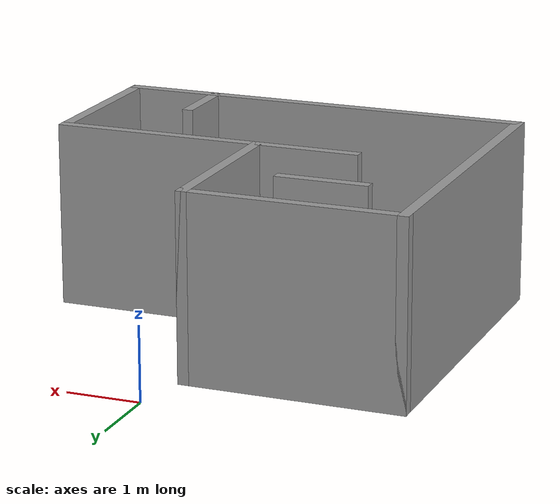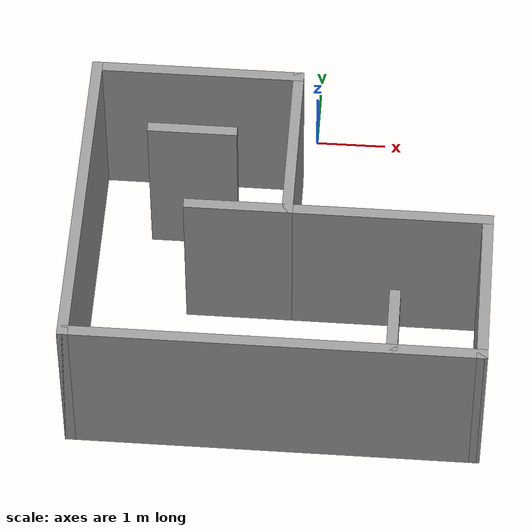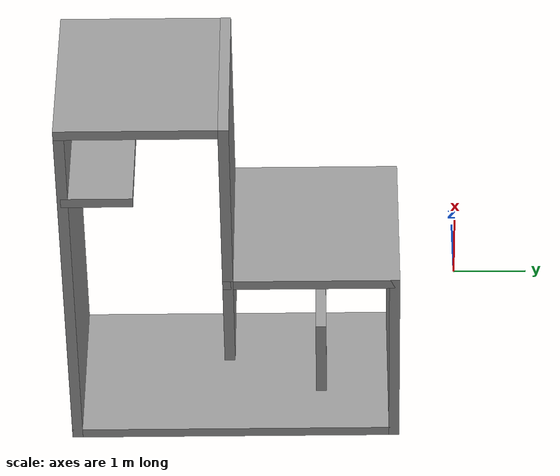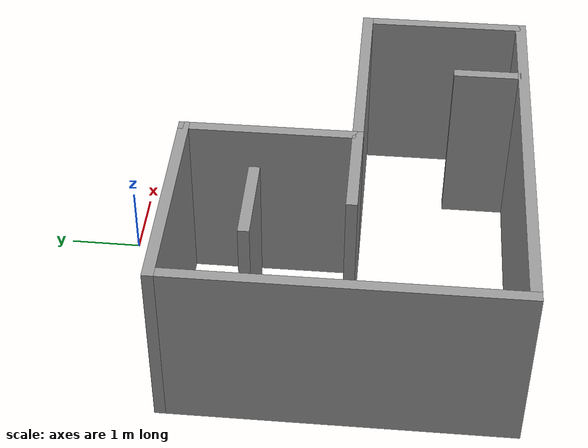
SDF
<?xml version='1.0'?>
<sdf version='1.7'>
  <model name='nav_1'>
    <pose>-0.28 -2.7525 0 0 -0 0</pose>
    <link name='Wall_0'>
      <collision name='Wall_0_Collision'>
        <geometry>
          <box>
            <size>3 0.15 2.5</size>
          </box>
        </geometry>
        <pose>0 0 1.25 0 -0 0</pose>
      </collision>
      <visual name='Wall_0_Visual'>
        <pose>0 0 1.25 0 -0 0</pose>
        <geometry>
          <box>
            <size>3 0.15 2.5</size>
          </box>
        </geometry>
        <material>
          <script>
            <uri>file://media/materials/scripts/gazebo.material</uri>
            <name>Gazebo/Grey</name>
          </script>
          <ambient>1 1 1 1</ambient>
        </material>
        <meta>
          <layer>0</layer>
        </meta>
      </visual>
      <pose>-1.375 1.9225 0 0 -0 0</pose>
    </link>
    <link name='Wall_1'>
      <collision name='Wall_1_Collision'>
        <geometry>
          <box>
            <size>2.5 0.15 2.5</size>
          </box>
        </geometry>
        <pose>0 0 1.25 0 -0 0</pose>
      </collision>
      <visual name='Wall_1_Visual'>
        <pose>0 0 1.25 0 -0 0</pose>
        <geometry>
          <box>
            <size>2.5 0.15 2.5</size>
          </box>
        </geometry>
        <material>
          <script>
            <uri>file://media/materials/scripts/gazebo.material</uri>
            <name>Gazebo/Grey</name>
          </script>
          <ambient>1 1 1 1</ambient>
        </material>
        <meta>
          <layer>0</layer>
        </meta>
      </visual>
      <pose>0.05 0.7475 0 0 -0 -1.5708</pose>
    </link>
    <link name='Wall_10'>
      <collision name='Wall_10_Collision'>
        <geometry>
          <box>
            <size>1 0.15 2.5</size>
          </box>
        </geometry>
        <pose>0 0 1.25 0 -0 0</pose>
      </collision>
      <visual name='Wall_10_Visual'>
        <pose>0 0 1.25 0 -0 0</pose>
        <geometry>
          <box>
            <size>1 0.15 2.5</size>
          </box>
        </geometry>
        <material>
          <script>
            <uri>file://media/materials/scripts/gazebo.material</uri>
            <name>Gazebo/Grey</name>
          </script>
          <ambient>1 1 1 1</ambient>
        </material>
        <meta>
          <layer>0</layer>
        </meta>
      </visual>
      <pose>1.59435 -2.20542 0 0 -0 -1.5708</pose>
    </link>
    <link name='Wall_14'>
      <collision name='Wall_14_Collision'>
        <geometry>
          <box>
            <size>1.5 0.15 2.5</size>
          </box>
        </geometry>
        <pose>0 0 1.25 0 -0 0</pose>
      </collision>
      <visual name='Wall_14_Visual'>
        <pose>0 0 1.25 0 -0 0</pose>
        <geometry>
          <box>
            <size>1.5 0.15 2.5</size>
          </box>
        </geometry>
        <material>
          <script>
            <uri>file://media/materials/scripts/gazebo.material</uri>
            <name>Gazebo/Grey</name>
          </script>
          <ambient>1 1 1 1</ambient>
        </material>
        <meta>
          <layer>0</layer>
        </meta>
      </visual>
      <pose>-0.625 -0.4275 0 0 -0 3.14159</pose>
    </link>
    <link name='Wall_2'>
      <collision name='Wall_2_Collision'>
        <geometry>
          <box>
            <size>2.9 0.15 2.5</size>
          </box>
        </geometry>
        <pose>0 0 1.25 0 -0 0</pose>
      </collision>
      <visual name='Wall_2_Visual'>
        <pose>0 0 1.25 0 -0 0</pose>
        <geometry>
          <box>
            <size>2.9 0.15 2.5</size>
          </box>
        </geometry>
        <material>
          <script>
            <uri>file://media/materials/scripts/gazebo.material</uri>
            <name>Gazebo/Grey</name>
          </script>
          <ambient>1 1 1 1</ambient>
        </material>
        <meta>
          <layer>0</layer>
        </meta>
      </visual>
      <pose>1.425 -0.4275 0 0 -0 0</pose>
    </link>
    <link name='Wall_4'>
      <collision name='Wall_4_Collision'>
        <geometry>
          <box>
            <size>4.75 0.15 2.5</size>
          </box>
        </geometry>
        <pose>0 0 1.25 0 -0 0</pose>
      </collision>
      <visual name='Wall_4_Visual'>
        <pose>0 0 1.25 0 -0 0</pose>
        <geometry>
          <box>
            <size>4.75 0.15 2.5</size>
          </box>
        </geometry>
        <material>
          <script>
            <uri>file://media/materials/scripts/gazebo.material</uri>
            <name>Gazebo/Grey</name>
          </script>
          <ambient>1 1 1 1</ambient>
        </material>
        <meta>
          <layer>0</layer>
        </meta>
      </visual>
      <pose>-2.8 -0.3775 0 0 -0 -1.5708</pose>
    </link>
    <link name='Wall_5'>
      <collision name='Wall_5_Collision'>
        <geometry>
          <box>
            <size>5.75 0.15 2.5</size>
          </box>
        </geometry>
        <pose>0 0 1.25 0 -0 0</pose>
      </collision>
      <visual name='Wall_5_Visual'>
        <pose>0 0 1.25 0 -0 0</pose>
        <geometry>
          <box>
            <size>5.75 0.15 2.5</size>
          </box>
        </geometry>
        <material>
          <script>
            <uri>file://media/materials/scripts/gazebo.material</uri>
            <name>Gazebo/Grey</name>
          </script>
          <ambient>1 1 1 1</ambient>
        </material>
        <meta>
          <layer>0</layer>
        </meta>
      </visual>
      <pose>0 -2.6775 0 0 -0 0</pose>
    </link>
    <link name='Wall_6'>
      <collision name='Wall_6_Collision'>
        <geometry>
          <box>
            <size>2.25 0.15 2.5</size>
          </box>
        </geometry>
        <pose>0 0 1.25 0 -0 0</pose>
      </collision>
      <visual name='Wall_6_Visual'>
        <pose>0 0 1.25 0 -0 0</pose>
        <geometry>
          <box>
            <size>2.25 0.15 2.5</size>
          </box>
        </geometry>
        <material>
          <script>
            <uri>file://media/materials/scripts/gazebo.material</uri>
            <name>Gazebo/Grey</name>
          </script>
          <ambient>1 1 1 1</ambient>
        </material>
        <meta>
          <layer>0</layer>
        </meta>
      </visual>
      <pose>2.8 -1.6275 0 0 -0 1.5708</pose>
    </link>
    <link name='Wall_8'>
      <collision name='Wall_8_Collision'>
        <geometry>
          <box>
            <size>1.25 0.15 2.5</size>
          </box>
        </geometry>
        <pose>0 0 1.25 0 -0 0</pose>
      </collision>
      <visual name='Wall_8_Visual'>
        <pose>0 0 1.25 0 -0 0</pose>
        <geometry>
          <box>
            <size>1.25 0.15 2.5</size>
          </box>
        </geometry>
        <material>
          <script>
            <uri>file://media/materials/scripts/gazebo.material</uri>
            <name>Gazebo/Grey</name>
          </script>
          <ambient>1 1 1 1</ambient>
        </material>
        <meta>
          <layer>0</layer>
        </meta>
      </visual>
      <pose>-1.3638 0.876043 0 0 -0 0</pose>
    </link>
    <static>1</static>
  </model>
</sdf>
